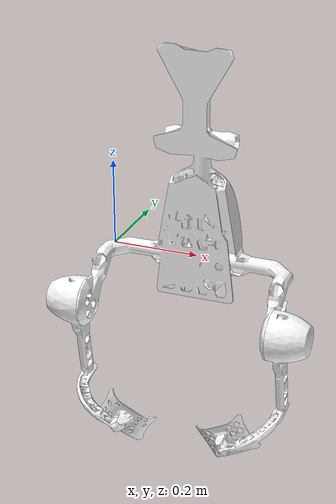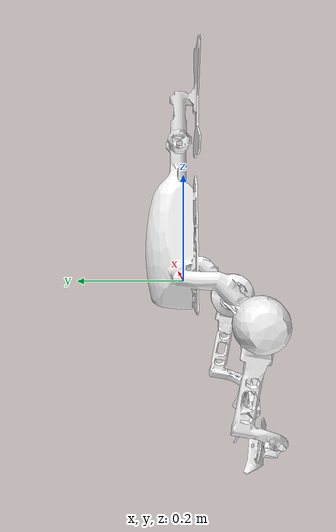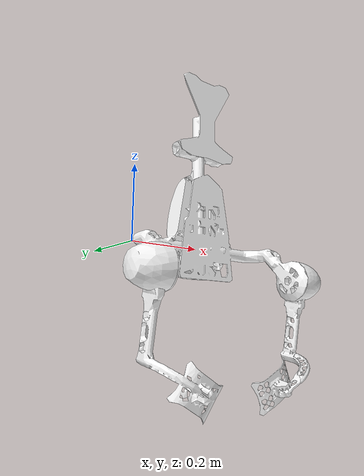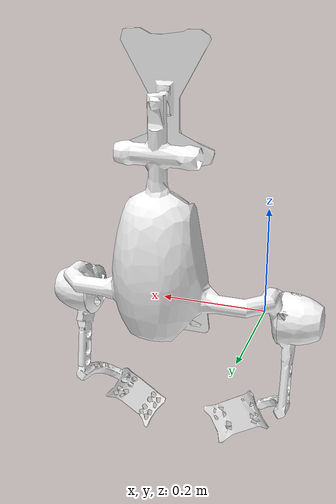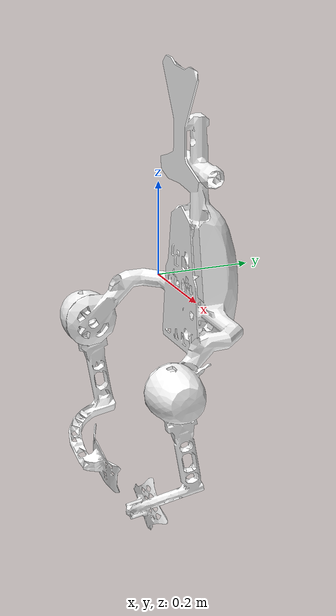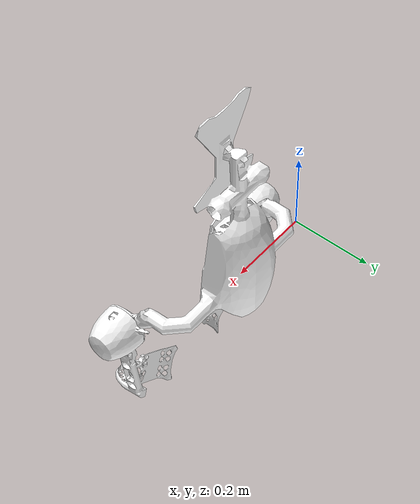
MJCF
<mujoco model="ExoskeletonURDFmodel">
  <compiler angle="radian" meshdir="/home/chenshuo/PycharmProjects/move_sim/SMPL/Exoskeleton3DOF_URDFmodel/meshes/"/>

  <asset>
    <mesh name="sim_torso_prt" file="sim_torso_prt.stl" scale="0.001 0.001 0.001"/>
    <mesh name="sim_rightleg_prt" file="sim_rightleg_prt.stl" scale="0.001 0.001 0.001"/>
    <mesh name="sim_leftleg_prt" file="sim_leftleg_prt.stl" scale="0.001 0.001 0.001"/>
  </asset>

  <worldbody>
    <geom type="mesh" contype="0" conaffinity="0" group="1" density="0" rgba="1 1 1 1" mesh="sim_torso_prt"/>
    <geom type="mesh" rgba="1 1 1 1" mesh="sim_torso_prt"/>
    <body name="ExoRightLeg" pos="-0.00595245 -0.147807 -0.0825556" quat="0.995953 0.0898785 0 0">
      <inertial pos="-0.0291201 -0.00378114 -0.0342128" quat="0.970139 -0.106966 -0.0791591 0.202785" mass="1.39397" diaginertia="0.00928457 0.00892086 0.00172993"/>
      <joint name="jActuatedRightHip_rotx" pos="0 0 0" axis="1 0 0" range="-2.0944 0.261799" actuatorfrcrange="-50000 50000" damping="0.223"/>
      <geom pos="0.00595245 0.147807 0.0825556" quat="1 0 0 0" type="mesh" contype="0" conaffinity="0" group="1" density="0" rgba="1 1 1 1" mesh="sim_rightleg_prt"/>
      <geom pos="0.00595245 0.147807 0.0825556" quat="1 0 0 0" type="mesh" rgba="1 1 1 1" mesh="sim_rightleg_prt"/>
    </body>
    <body name="ExoLeftLeg" pos="0.425543 -0.147807 -0.0825556" quat="0.995953 0.0898785 0 0">
      <inertial pos="0.025847 -0.00274416 -0.0319785" quat="0.976328 -0.0948369 0.0639627 -0.183569" mass="1.6863" diaginertia="0.0106474 0.0102117 0.00216388"/>
      <joint name="jActuatedLeftHip_rotx" pos="0 0 0" axis="-1 0 0" range="-0.261799 2.0944" actuatorfrcrange="-50000 50000" damping="0.223"/>
      <geom pos="-0.425543 0.147807 0.0825556" quat="1 0 0 0" type="mesh" contype="0" conaffinity="0" group="1" density="0" rgba="1 1 1 1" mesh="sim_leftleg_prt"/>
      <geom pos="-0.425543 0.147807 0.0825556" quat="1 0 0 0" type="mesh" rgba="1 1 1 1" mesh="sim_leftleg_prt"/>
    </body>
  </worldbody>
</mujoco>
